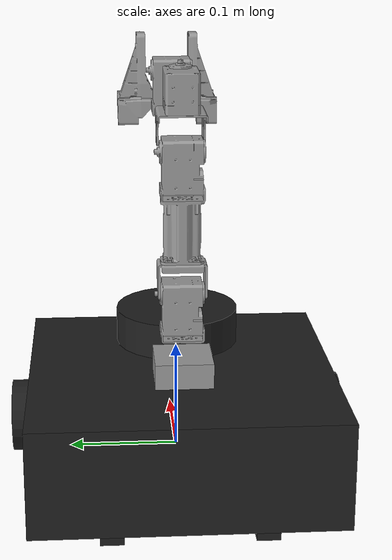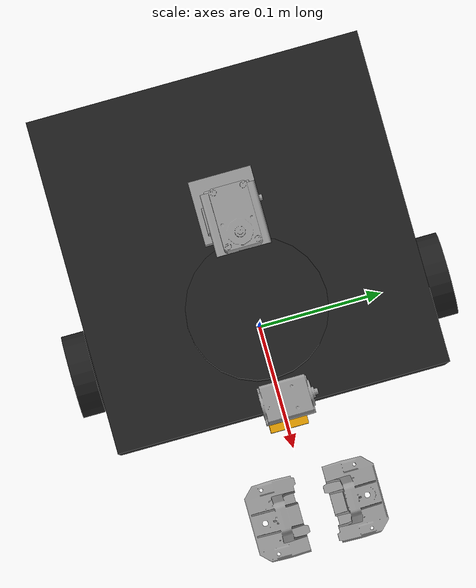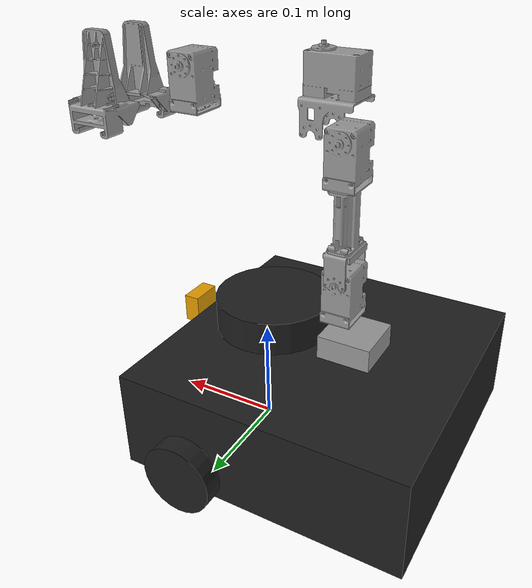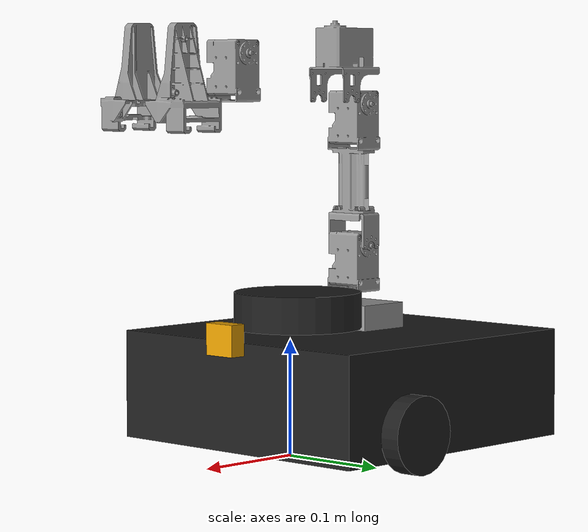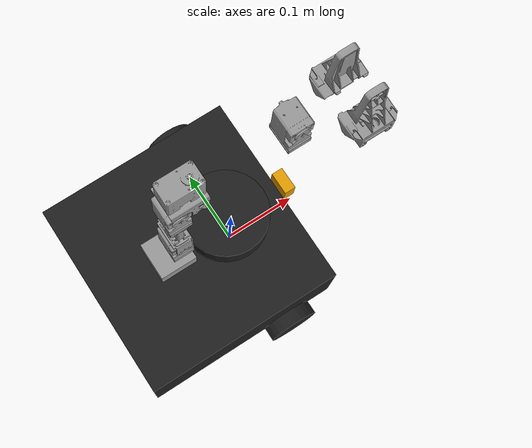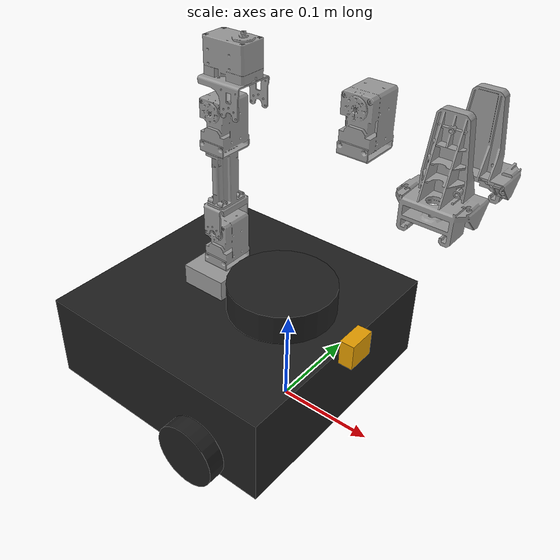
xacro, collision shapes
<?xml version="1.0"?>
<robot xmlns:xacro="http://www.ros.org/wiki/xacro" name="turtlebot3_manipulation">
    <xacro:arg name="initial_positions_file" default="initial_positions.yaml" />

    <!-- Import turtlebot3_manipulation urdf file -->
    <xacro:include filename="$(find turtlebot3_manipulation_description)/urdf/turtlebot3_manipulation.urdf.xacro" />

    <!-- Import control_xacro -->
    <xacro:include filename="turtlebot3_manipulation.ros2_control.xacro" />

    <xacro:turtlebot3_manipulation_ros2_control name="FakeSystem" initial_positions_file="$(arg initial_positions_file)"/>

</robot>

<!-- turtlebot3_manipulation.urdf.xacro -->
<!-- TurtleBot3 Manipulation -->
<robot name="turtlebot3_manipulation" xmlns:xacro="http://www.ros.org/wiki/xacro">
  <xacro:arg name="prefix" default="" />
  <xacro:arg name="use_sim" default="false" />

  <xacro:arg name="use_fake_hardware" default="false" />
  <xacro:arg name="fake_sensor_commands" default="false" />

  <!-- Import materials macro -->
  <xacro:include filename="$(find turtlebot3_manipulation_description)/gazebo/materials.xacro" />

  <!-- Include TurtleBot3 Waffle Pi urdf macro -->
  <xacro:include filename="$(find turtlebot3_manipulation_description)/urdf/turtlebot3_waffle_pi.urdf.xacro" />

  <!-- Include TurtleBot3 Waffle Pi gazebo macro -->
  <xacro:include filename="$(find turtlebot3_manipulation_description)/gazebo/turtlebot3_waffle_pi.gazebo.xacro" />

  <!-- Include OpenManipulator-X urdf macro -->
  <xacro:include filename="$(find turtlebot3_manipulation_description)/urdf/open_manipulator_x.urdf.xacro" />

  <!-- Include OpenManipulator-X gazebo macro -->
  <xacro:include filename="$(find turtlebot3_manipulation_description)/gazebo/open_manipulator_x.gazebo.xacro" />

  <!-- Include TurtleBot3 Manipulation ros2 control macro -->
  <xacro:include filename="$(find turtlebot3_manipulation_description)/ros2_control/turtlebot3_manipulation_system.ros2_control.xacro" />

  <xacro:turtlebot3_waffle_pi prefix="$(arg prefix)" />
  <xacro:turtlebot3_waffle_pi_gazebo prefix="$(arg prefix)" />

  <!-- Used for fixing OpenManipulator-X on TurtleBot3 Waffle Pi -->
  <joint name="$(arg prefix)base_fixed" type="fixed">
    <parent link="$(arg prefix)base_link"/>
    <child link="$(arg prefix)link1"/>
    <origin xyz="-0.092 0.0 0.091" rpy="0 0 0"/>
  </joint>

  <xacro:open_manipulator_x prefix="$(arg prefix)" />
  <xacro:open_manipulator_x_gazebo prefix="$(arg prefix)" />

  <xacro:turtlebot3_manipulation_system
    name="TurtleBot3ManipulationSystem" prefix="$(arg prefix)" use_sim="$(arg use_sim)"
    use_fake_hardware="$(arg use_fake_hardware)"
    fake_sensor_commands="$(arg fake_sensor_commands)"/>

  <gazebo>
    <plugin name="gazebo_ros2_control" filename="libgazebo_ros2_control.so">
      <parameters>$(find turtlebot3_manipulation_bringup)/config/controller_manager.yaml</parameters>
    </plugin>
  </gazebo>

</robot>

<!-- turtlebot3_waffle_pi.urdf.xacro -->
<!-- TurtleBot3 Waffle Pi -->
<!--
Copied and modified from turtlebot3 example -
https://github.com/ROBOTIS-GIT/turtlebot3/blob/kinetic-devel/turtlebot3_description/urdf/turtlebot3_waffle_pi_for_open_manipulator.urdf.xacro
-->
<robot xmlns:xacro="http://www.ros.org/wiki/xacro">

  <xacro:macro name="turtlebot3_waffle_pi" params="prefix">

  <xacro:property
    name="meshes_file_direction"
    value="package://turtlebot3_manipulation_description/meshes/turtlebot3_waffle_pi"/>

  <link name="${prefix}base_footprint"/>

  <joint name="${prefix}base_joint" type="fixed">
    <parent link="${prefix}base_footprint"/>
    <child link="${prefix}base_link" />
    <origin xyz="0 0 0.010" rpy="0 0 0"/>
  </joint>

  <link name="${prefix}base_link">
    <visual>
      <origin xyz="-0.064 0 0.0" rpy="0 0 0"/>
      <geometry>
        <mesh filename="${meshes_file_direction}/base.stl" scale="0.001 0.001 0.001"/>
      </geometry>
      <material name="light_black"/>
    </visual>

    <collision>
      <origin xyz="-0.064 0 0.047" rpy="0 0 0"/>
      <geometry>
        <box size="0.266 0.266 0.094"/>
      </geometry>
    </collision>

    <inertial>
      <origin xyz="0 0 0" rpy="0 0 0"/>
      <mass value="1.3729096e+00"/>
      <inertia ixx="8.7002718e-03" ixy="-4.7576583e-05" ixz="1.1160499e-04"
               iyy="8.6195418e-03" iyz="-3.5422299e-06"
               izz="1.4612727e-02" />
    </inertial>
  </link>

  <joint name="${prefix}wheel_left_joint" type="continuous">
    <parent link="${prefix}base_link"/>
    <child link="${prefix}wheel_left_link"/>
    <origin xyz="0.0 0.144 0.023" rpy="-1.57 0 0"/>
    <axis xyz="0 0 1"/>
  </joint>

  <link name="${prefix}wheel_left_link">
    <visual>
      <origin xyz="0 0 0" rpy="1.57 0 0"/>
      <geometry>
        <mesh filename="${meshes_file_direction}/left_tire.stl" scale="0.001 0.001 0.001"/>
      </geometry>
      <material name="dark"/>
    </visual>

    <collision>
      <origin xyz="0 0 0" rpy="0 0 0"/>
      <geometry>
        <cylinder length="0.018" radius="0.033"/>
      </geometry>
    </collision>

    <inertial>
      <origin xyz="0 0 0" />
      <mass value="2.8498940e-02" />
      <inertia ixx="1.1175580e-05" ixy="-4.2369783e-11" ixz="-5.9381719e-09"
               iyy="1.1192413e-05" iyz="-1.4400107e-11"
               izz="2.0712558e-05" />
      </inertial>
  </link>

  <joint name="${prefix}wheel_right_joint" type="continuous">
    <parent link="${prefix}base_link"/>
    <child link="${prefix}wheel_right_link"/>
    <origin xyz="0.0 -0.144 0.023" rpy="-1.57 0 0"/>
    <axis xyz="0 0 1"/>
  </joint>

  <link name="${prefix}wheel_right_link">
    <visual>
      <origin xyz="0 0 0" rpy="1.57 0 0"/>
      <geometry>
        <mesh filename="${meshes_file_direction}/right_tire.stl" scale="0.001 0.001 0.001"/>
      </geometry>
      <material name="dark"/>
    </visual>

    <collision>
      <origin xyz="0 0 0" rpy="0 0 0"/>
      <geometry>
        <cylinder length="0.018" radius="0.033"/>
      </geometry>
    </collision>

    <inertial>
      <origin xyz="0 0 0" />
      <mass value="2.8498940e-02" />
      <inertia ixx="1.1175580e-05" ixy="-4.2369783e-11" ixz="-5.9381719e-09"
               iyy="1.1192413e-05" iyz="-1.4400107e-11"
               izz="2.0712558e-05" />
      </inertial>
  </link>

  <joint name="${prefix}caster_back_right_joint" type="fixed">
    <parent link="${prefix}base_link"/>
    <child link="${prefix}caster_back_right_link"/>
    <origin xyz="-0.177 -0.064 -0.004" rpy="-1.57 0 0"/>
  </joint>

  <link name="${prefix}caster_back_right_link">
    <collision>
      <origin xyz="0 0.001 0" rpy="0 0 0"/>
      <geometry>
        <box size="0.030 0.009 0.020"/>
      </geometry>
    </collision>

    <inertial>
      <origin xyz="0 0 0" />
      <mass value="0.005" />
      <inertia ixx="0.001" ixy="0.0" ixz="0.0"
               iyy="0.001" iyz="0.0"
               izz="0.001" />
    </inertial>
  </link>

  <joint name="${prefix}caster_back_left_joint" type="fixed">
    <parent link="${prefix}base_link"/>
    <child link="${prefix}caster_back_left_link"/>
    <origin xyz="-0.177 0.064 -0.004" rpy="-1.57 0 0"/>
  </joint>

  <link name="${prefix}caster_back_left_link">
    <collision>
      <origin xyz="0 0.001 0" rpy="0 0 0"/>
      <geometry>
        <box size="0.030 0.009 0.020"/>
      </geometry>
    </collision>

    <inertial>
      <origin xyz="0 0 0" />
      <mass value="0.005" />
      <inertia ixx="0.001" ixy="0.0" ixz="0.0"
               iyy="0.001" iyz="0.0"
               izz="0.001" />
    </inertial>
  </link>

  <joint name="${prefix}imu_joint" type="fixed">
    <parent link="${prefix}base_link"/>
    <child link="${prefix}imu_link"/>
    <origin xyz="0.0 0 0.068" rpy="0 0 0"/>
  </joint>

  <link name="${prefix}imu_link"/>

  <joint name="${prefix}scan_joint" type="fixed">
    <parent link="${prefix}base_link"/>
    <child link="${prefix}base_scan"/>
    <origin xyz="-0.024 0 0.122" rpy="0 0 0"/>
  </joint>

  <link name="${prefix}base_scan">
    <visual>
      <origin xyz="0 0 0.0" rpy="0 0 0"/>
      <geometry>
        <mesh filename="${meshes_file_direction}/ladar.stl" scale="0.001 0.001 0.001"/>
      </geometry>
      <material name="dark"/>
    </visual>

    <collision>
      <origin xyz="0.015 0 -0.0065" rpy="0 0 0"/>
      <geometry>
        <cylinder length="0.0315" radius="0.055"/>
      </geometry>
    </collision>

    <inertial>
      <mass value="0.114" />
      <origin xyz="0 0 0" />
      <inertia ixx="0.001" ixy="0.0" ixz="0.0"
               iyy="0.001" iyz="0.0"
               izz="0.001" />
    </inertial>
  </link>

  <joint name="${prefix}camera_joint" type="fixed">
    <parent link="${prefix}base_link"/>
    <child link="${prefix}camera_link"/>
    <origin xyz="0.073 -0.011 0.084" rpy="0 0 0"/>
  </joint>

  <link name="${prefix}camera_link">
    <collision>
      <origin xyz="0.005 0.011 0.013" rpy="0 0 0"/>
      <geometry>
        <box size="0.015 0.030 0.027"/>
      </geometry>
    </collision>
  </link>

  <joint name="${prefix}camera_rgb_joint" type="fixed">
    <parent link="${prefix}camera_link"/>
    <child link="${prefix}camera_rgb_frame"/>
    <origin xyz="0.003 0.011 0.009" rpy="0 0 0"/>
  </joint>

  <link name="${prefix}camera_rgb_frame"/>

  <joint name="${prefix}camera_rgb_optical_joint" type="fixed">
    <parent link="${prefix}camera_rgb_frame"/>
    <child link="${prefix}camera_rgb_optical_frame"/>
    <origin xyz="0 0 0" rpy="-1.57 0 -1.57"/>
  </joint>

  <link name="${prefix}camera_rgb_optical_frame"/>

  </xacro:macro>

</robot>

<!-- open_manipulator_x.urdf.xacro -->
<!-- OpenManipulator-X -->
<!--
Copied and modified from open_manipulator-x example -
https://github.com/ROBOTIS-GIT/open_manipulator/blob/kinetic-devel/open_manipulator_description/urdf/open_manipulator.urdf.xacro
-->
<robot xmlns:xacro="http://www.ros.org/wiki/xacro">

  <xacro:macro name="open_manipulator_x" params="prefix">

    <xacro:property
      name="meshes_file_direction"
      value="package://turtlebot3_manipulation_description/meshes/open_manipulator_x"/>

    <link name="${prefix}link1">
      <visual>
        <origin xyz="0 0 0" rpy="0 0 0"/>
        <geometry>
          <mesh filename="${meshes_file_direction}/link1.stl" scale="0.001 0.001 0.001"/>
        </geometry>
        <material name="grey"/>
      </visual>

      <collision>
        <origin xyz="0 0 0" rpy="0 0 0"/>
        <geometry>
          <box size="0.05 0.05 0.05"/>
        </geometry>
      </collision>

       <inertial>
        <origin xyz="3.0876154e-04 0.0000000e+00 -1.2176461e-04" />
        <mass value="7.9119962e-02" />
        <inertia ixx="1.2505234e-05" ixy="0.0" ixz="-1.7855208e-07"
                 iyy="2.1898364e-05" iyz="0.0"
                 izz="1.9267361e-05" />
      </inertial>
    </link>

    <joint name="${prefix}joint1" type="revolute">
      <parent link="${prefix}link1"/>
      <child link="${prefix}link2"/>
      <origin xyz="0.012 0.0 0.017" rpy="0 0 0"/>
      <axis xyz="0 0 1"/>
      <limit velocity="4.8" effort="1" lower="${-pi*0.9}" upper="${pi*0.9}" />
      <dynamics damping="0.1"/>
    </joint>

    <link name="${prefix}link2">
      <visual>
        <origin xyz="0 0 0.019" rpy="0 0 0"/>
        <geometry>
          <mesh filename="${meshes_file_direction}/link2.stl" scale="0.001 0.001 0.001"/>
        </geometry>
        <material name="grey"/>
      </visual>

      <collision>
        <origin xyz="0 0 0.019" rpy="0 0 0"/>
        <geometry>
          <mesh filename="${meshes_file_direction}/link2.stl" scale="0.001 0.001 0.001"/>
        </geometry>
      </collision>

       <inertial>
        <origin xyz="-3.0184870e-04 5.4043684e-04 ${0.018 + 2.9433464e-02}" />
        <mass value="9.8406837e-02" />
        <inertia ixx="3.4543422e-05" ixy="-1.6031095e-08" ixz="-3.8375155e-07"
                 iyy="3.2689329e-05" iyz="2.8511935e-08"
                 izz="1.8850320e-05" />
      </inertial>
    </link>

    <joint name="${prefix}joint2" type="revolute">
      <parent link="${prefix}link2"/>
      <child link="${prefix}link3"/>
      <origin xyz="0.0 0.0 0.0595" rpy="0 0 0"/>
      <axis xyz="0 1 0"/>
      <limit velocity="4.8" effort="1" lower="${-pi*0.57}" upper="${pi*0.5}" />
      <dynamics damping="0.1"/>
    </joint>

    <link name="${prefix}link3">
      <visual>
        <origin xyz="0 0 0" rpy="0 0 0"/>
        <geometry>
          <mesh filename="${meshes_file_direction}/link3.stl" scale="0.001 0.001 0.001"/>
        </geometry>
        <material name="grey"/>
      </visual>

      <collision>
        <origin xyz="0 0 0" rpy="0 0 0"/>
        <geometry>
          <mesh filename="${meshes_file_direction}/link3.stl" scale="0.001 0.001 0.001"/>
        </geometry>
      </collision>

       <inertial>
        <origin xyz="1.0308393e-02 3.7743363e-04 1.0170197e-01" />
        <mass value="1.3850917e-01" />
        <inertia ixx="3.3055381e-04" ixy="-9.7940978e-08" ixz="-3.8505711e-05"
                 iyy="3.4290447e-04" iyz="-1.5717516e-06"
                 izz="6.0346498e-05" />
      </inertial>
    </link>

    <joint name="${prefix}joint3" type="revolute">
      <parent link="${prefix}link3"/>
      <child link="${prefix}link4"/>
      <origin xyz="0.024 0 0.128" rpy="0 0 0"/>
      <axis xyz="0 1 0"/>
      <limit velocity="4.8" effort="1" lower="${-pi*0.3}" upper="${pi*0.44}" />
      <dynamics damping="0.1"/>
    </joint>

    <link name="${prefix}link4">
      <visual>
        <origin xyz="0 0 0" rpy="0 0 0"/>
        <geometry>
          <mesh filename="${meshes_file_direction}/link4.stl" scale="0.001 0.001 0.001"/>
        </geometry>
        <material name="grey"/>
      </visual>

      <collision>
        <origin xyz="0 0 0" rpy="0 0 0"/>
        <geometry>
          <mesh filename="${meshes_file_direction}/link4.stl" scale="0.001 0.001 0.001"/>
        </geometry>
      </collision>

       <inertial>
        <origin xyz="9.0909590e-02 3.8929816e-04 2.2413279e-04" />
        <mass value="1.3274562e-01" />
        <inertia ixx="3.0654178e-05" ixy="-1.2764155e-06" ixz="-2.6874417e-07"
                 iyy="2.4230292e-04" iyz="1.1559550e-08"
                 izz="2.5155057e-04" />
      </inertial>
    </link>

    <joint name="${prefix}joint4" type="revolute">
      <parent link="${prefix}link4"/>
      <child link="${prefix}link5"/>
      <origin xyz="0.124 0.0 0.0" rpy="0 0 0"/>
      <axis xyz="0 1 0"/>
      <limit velocity="4.8" effort="1" lower="${-pi*0.57}" upper="${pi*0.65}" />
      <dynamics damping="0.1"/>
    </joint>

    <link name="${prefix}link5">
      <visual>
        <origin xyz="0 0 0" rpy="0 0 0"/>
        <geometry>
          <mesh filename="${meshes_file_direction}/link5.stl" scale="0.001 0.001 0.001"/>
        </geometry>
        <material name="grey"/>
      </visual>

      <collision>
        <origin xyz="0 0 0" rpy="0 0 0"/>
        <geometry>
          <mesh filename="${meshes_file_direction}/link5.stl" scale="0.001 0.001 0.001"/>
        </geometry>
      </collision>

       <inertial>
        <origin xyz="4.4206755e-02 3.6839985e-07 8.9142216e-03" />
        <mass value="1.4327573e-01" />
        <inertia ixx="8.0870749e-05" ixy="0.0" ixz="-1.0157896e-06"
                 iyy="7.5980465e-05" iyz="0.0"
                 izz="9.3127351e-05" />
      </inertial>
    </link>

    <joint name="${prefix}gripper_left_joint" type="prismatic">
      <parent link="${prefix}link5"/>
      <child link="${prefix}gripper_left_link"/>
      <origin xyz="0.0817 0.021 0.0" rpy="0 0 0"/>
      <axis xyz="0 1 0"/>
      <limit velocity="4.8" effort="1" lower="-0.010" upper="0.019" />
      <dynamics damping="0.1"/>
    </joint>

    <link name="${prefix}gripper_left_link">
      <visual>
        <origin xyz="0 0 0" rpy="0 0 0"/>
        <geometry>
          <mesh filename="${meshes_file_direction}/gripper_left_palm.stl" scale="0.001 0.001 0.001"/>
        </geometry>
        <material name="grey"/>
      </visual>

      <collision>
        <origin xyz="0 0 0" rpy="0 0 0"/>
        <geometry>
          <mesh filename="${meshes_file_direction}/gripper_left_palm.stl" scale="0.001 0.001 0.001"/>
        </geometry>
      </collision>

      <inertial>
        <origin xyz="0 0 0" />
        <mass value="1.0e-03" />
        <inertia ixx="1.0e-06" ixy="0.0" ixz="0.0"
                 iyy="1.0e-06" iyz="0.0"
                 izz="1.0e-06" />
      </inertial>
    </link>

    <joint name="${prefix}gripper_right_joint_mimic" type="fixed">
      <parent link="${prefix}link5" />
      <child link="dummy_mimic_fix" />
    </joint>
    <link name="dummy_mimic_fix"/>

    <joint name="${prefix}gripper_right_joint" type="prismatic">
      <parent link="${prefix}link5"/>
      <child link="${prefix}gripper_right_link"/>
      <origin xyz="0.0817 -0.021 0" rpy="0 0 0"/>
      <axis xyz="0 -1 0"/>
      <limit velocity="4.8" effort="1" lower="-0.010" upper="0.019" />
      <mimic joint="${prefix}gripper_left_joint" multiplier="1"/>
      <dynamics damping="0.1"/>
    </joint>

    <link name="${prefix}gripper_right_link">
      <visual>
        <origin xyz="0 0 0" rpy="0 0 0"/>
        <geometry>
          <mesh filename="${meshes_file_direction}/gripper_right_palm.stl" scale="0.001 0.001 0.001"/>
        </geometry>
        <material name="grey"/>
      </visual>

      <collision>
        <origin xyz="0 0 0" rpy="0 0 0"/>
        <geometry>
          <mesh filename="${meshes_file_direction}/gripper_right_palm.stl" scale="0.001 0.001 0.001"/>
        </geometry>
      </collision>

      <inertial>
        <origin xyz="0 0 0" />
        <mass value="1.0e-03" />
        <inertia ixx="1.0e-06" ixy="0.0" ixz="0.0"
                 iyy="1.0e-06" iyz="0.0"
                 izz="1.0e-06" />
      </inertial>
    </link>

    <joint name="${prefix}end_effector_joint" type="fixed">
      <parent link="${prefix}link5"/>
      <child link="${prefix}end_effector_link"/>
      <origin xyz="0.126 0.0 0.0" rpy="0 0 0"/>
    </joint>

    <link name="${prefix}end_effector_link">
      <visual>
        <origin xyz="0 0 0" rpy="0 0 0"/>
        <geometry>
          <box size="0.01 0.01 0.01" />
        </geometry>
        <material name="red"/>
       </visual>
    </link>

  </xacro:macro>

</robot>
